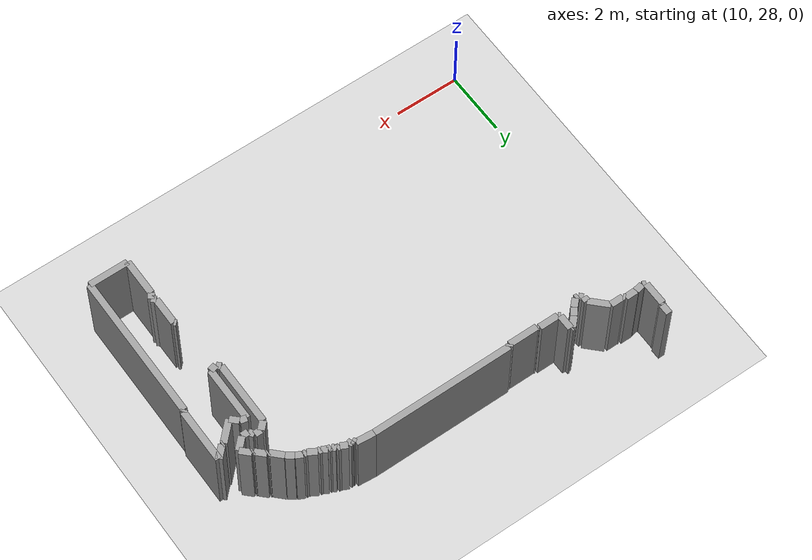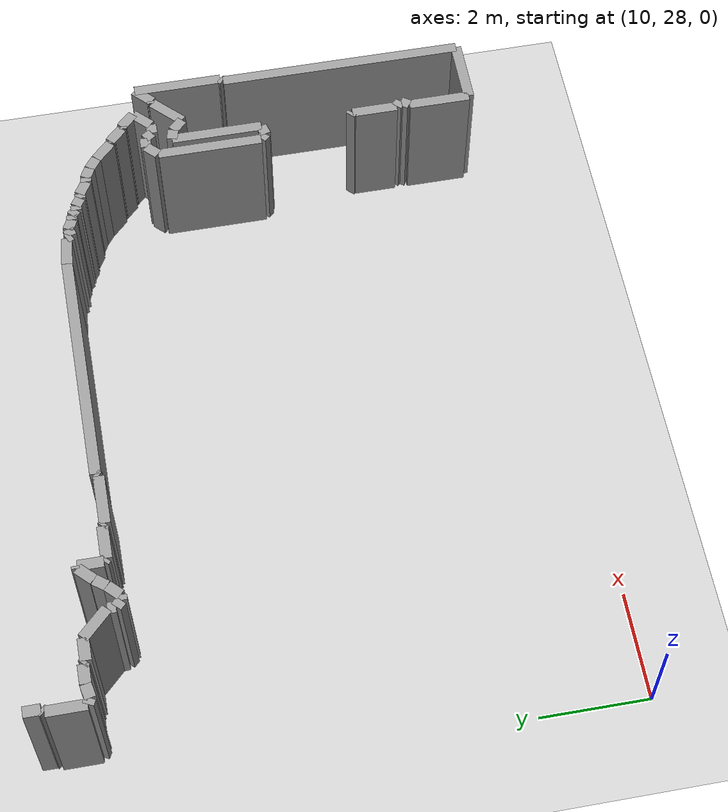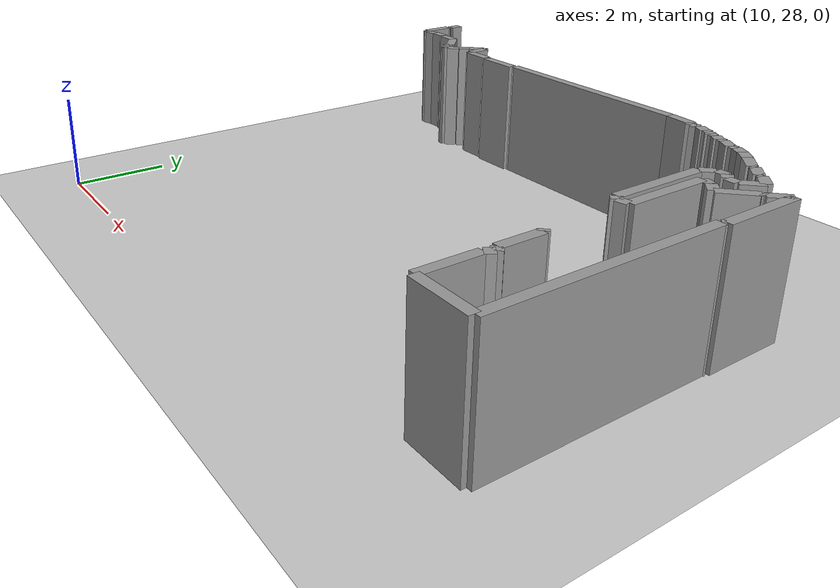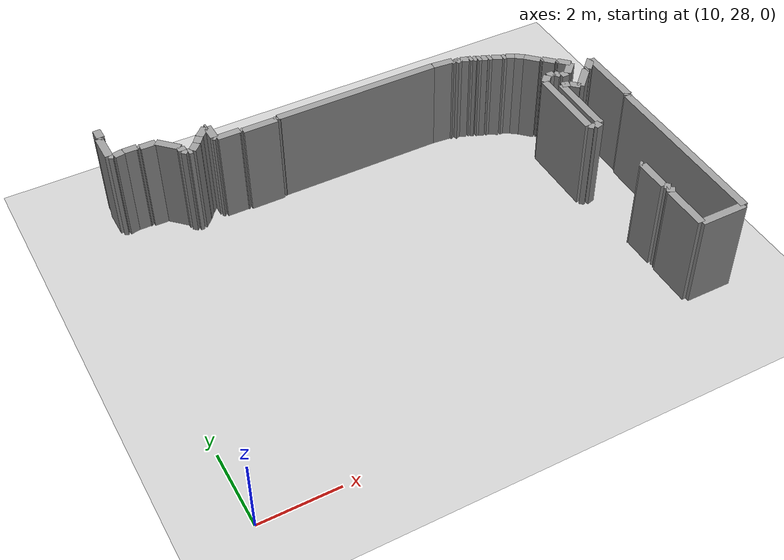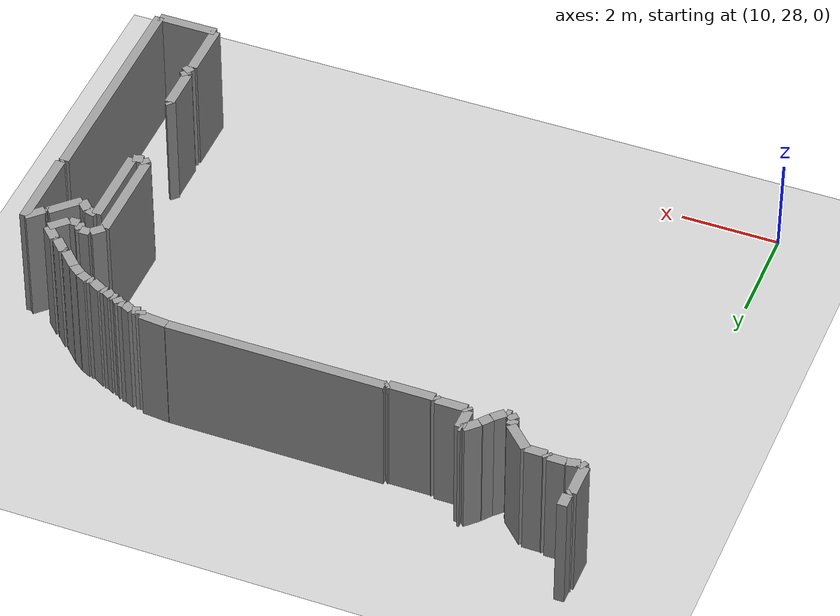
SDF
<sdf version="1.4">
 <world name="1_wall">
  <model name="ground_plane">
   <static>1</static>
   <link name="link">
    <collision name="collision">
     <geometry><plane><normal>0 0 1</normal><size>1000 1000</size></plane></geometry>
     <surface><friction><ode><mu>100</mu><mu2>50</mu2></ode></friction></surface>
    </collision>
    <visual name="visual">
     <cast_shadows>0</cast_shadows>
     <geometry><plane><normal>0 0 1</normal><size>10000 10000</size></plane></geometry>
     <material>
      <script><uri>file://media/materials/scripts/gazebo.material</uri><name>Gazebo/Grey</name></script>
     </material>
    </visual>
    <velocity_decay><linear>0</linear><angular>0</angular></velocity_decay>
   </link>
  </model>
  <model name="Wall_258">
   <static>1</static>
   <link name="Wall_258">
    <collision name="Wall_Collision_258">
     <geometry><box><size>0.3 0.2 2.5</size></box></geometry>
     <pose>0 0 1.25 0 -0 0</pose>
    </collision>
    <visual name="Wall_Visual_258">
     <pose>0 0 1.25 0 -0 0</pose>
     <geometry><box><size>0.3 0.2 2.5</size></box></geometry>
     <material>
      <script><uri>file://media/materials/scripts/gazebo.material</uri><name>Gazebo/Grey</name></script>
     </material>
    </visual>
    <velocity_decay><linear>0</linear><angular>0</angular></velocity_decay>
    <pose>10.7 38.35 0 0 0 -1.57079632679</pose>
   </link>
  </model>
  <model name="Wall_259">
   <static>1</static>
   <link name="Wall_259">
    <collision name="Wall_Collision_259">
     <geometry><box><size>0.0707106781187 0.2 2.5</size></box></geometry>
     <pose>0 0 1.25 0 -0 0</pose>
    </collision>
    <visual name="Wall_Visual_259">
     <pose>0 0 1.25 0 -0 0</pose>
     <geometry><box><size>0.0707106781187 0.2 2.5</size></box></geometry>
     <material>
      <script><uri>file://media/materials/scripts/gazebo.material</uri><name>Gazebo/Grey</name></script>
     </material>
    </visual>
    <velocity_decay><linear>0</linear><angular>0</angular></velocity_decay>
    <pose>10.675 38.175 0 0 0 -2.35619449019</pose>
   </link>
  </model>
  <model name="Wall_260">
   <static>1</static>
   <link name="Wall_260">
    <collision name="Wall_Collision_260">
     <geometry><box><size>0.7 0.2 2.5</size></box></geometry>
     <pose>0 0 1.25 0 -0 0</pose>
    </collision>
    <visual name="Wall_Visual_260">
     <pose>0 0 1.25 0 -0 0</pose>
     <geometry><box><size>0.7 0.2 2.5</size></box></geometry>
     <material>
      <script><uri>file://media/materials/scripts/gazebo.material</uri><name>Gazebo/Grey</name></script>
     </material>
    </visual>
    <velocity_decay><linear>0</linear><angular>0</angular></velocity_decay>
    <pose>10.65 37.8 0 0 0 -1.57079632679</pose>
   </link>
  </model>
  <model name="Wall_261">
   <static>1</static>
   <link name="Wall_261">
    <collision name="Wall_Collision_261">
     <geometry><box><size>0.111803398875 0.2 2.5</size></box></geometry>
     <pose>0 0 1.25 0 -0 0</pose>
    </collision>
    <visual name="Wall_Visual_261">
     <pose>0 0 1.25 0 -0 0</pose>
     <geometry><box><size>0.111803398875 0.2 2.5</size></box></geometry>
     <material>
      <script><uri>file://media/materials/scripts/gazebo.material</uri><name>Gazebo/Grey</name></script>
     </material>
    </visual>
    <velocity_decay><linear>0</linear><angular>0</angular></velocity_decay>
    <pose>10.7 37.425 0 0 0 -0.463647609001</pose>
   </link>
  </model>
  <model name="Wall_262">
   <static>1</static>
   <link name="Wall_262">
    <collision name="Wall_Collision_262">
     <geometry><box><size>0.25495097568 0.2 2.5</size></box></geometry>
     <pose>0 0 1.25 0 -0 0</pose>
    </collision>
    <visual name="Wall_Visual_262">
     <pose>0 0 1.25 0 -0 0</pose>
     <geometry><box><size>0.25495097568 0.2 2.5</size></box></geometry>
     <material>
      <script><uri>file://media/materials/scripts/gazebo.material</uri><name>Gazebo/Grey</name></script>
     </material>
    </visual>
    <velocity_decay><linear>0</linear><angular>0</angular></velocity_decay>
    <pose>10.875 37.425 0 0 0 0.19739555985</pose>
   </link>
  </model>
  <model name="Wall_263">
   <static>1</static>
   <link name="Wall_263">
    <collision name="Wall_Collision_263">
     <geometry><box><size>0.35 0.2 2.5</size></box></geometry>
     <pose>0 0 1.25 0 -0 0</pose>
    </collision>
    <visual name="Wall_Visual_263">
     <pose>0 0 1.25 0 -0 0</pose>
     <geometry><box><size>0.35 0.2 2.5</size></box></geometry>
     <material>
      <script><uri>file://media/materials/scripts/gazebo.material</uri><name>Gazebo/Grey</name></script>
     </material>
    </visual>
    <velocity_decay><linear>0</linear><angular>0</angular></velocity_decay>
    <pose>11.175 37.45 0 0 0 0.0</pose>
   </link>
  </model>
  <model name="Wall_264">
   <static>1</static>
   <link name="Wall_264">
    <collision name="Wall_Collision_264">
     <geometry><box><size>0.0707106781187 0.2 2.5</size></box></geometry>
     <pose>0 0 1.25 0 -0 0</pose>
    </collision>
    <visual name="Wall_Visual_264">
     <pose>0 0 1.25 0 -0 0</pose>
     <geometry><box><size>0.0707106781187 0.2 2.5</size></box></geometry>
     <material>
      <script><uri>file://media/materials/scripts/gazebo.material</uri><name>Gazebo/Grey</name></script>
     </material>
    </visual>
    <velocity_decay><linear>0</linear><angular>0</angular></velocity_decay>
    <pose>11.375 37.425 0 0 0 -0.785398163398</pose>
   </link>
  </model>
  <model name="Wall_265">
   <static>1</static>
   <link name="Wall_265">
    <collision name="Wall_Collision_265">
     <geometry><box><size>0.4 0.2 2.5</size></box></geometry>
     <pose>0 0 1.25 0 -0 0</pose>
    </collision>
    <visual name="Wall_Visual_265">
     <pose>0 0 1.25 0 -0 0</pose>
     <geometry><box><size>0.4 0.2 2.5</size></box></geometry>
     <material>
      <script><uri>file://media/materials/scripts/gazebo.material</uri><name>Gazebo/Grey</name></script>
     </material>
    </visual>
    <velocity_decay><linear>0</linear><angular>0</angular></velocity_decay>
    <pose>11.6 37.4 0 0 0 0.0</pose>
   </link>
  </model>
  <model name="Wall_266">
   <static>1</static>
   <link name="Wall_266">
    <collision name="Wall_Collision_266">
     <geometry><box><size>0.636396103068 0.2 2.5</size></box></geometry>
     <pose>0 0 1.25 0 -0 0</pose>
    </collision>
    <visual name="Wall_Visual_266">
     <pose>0 0 1.25 0 -0 0</pose>
     <geometry><box><size>0.636396103068 0.2 2.5</size></box></geometry>
     <material>
      <script><uri>file://media/materials/scripts/gazebo.material</uri><name>Gazebo/Grey</name></script>
     </material>
    </visual>
    <velocity_decay><linear>0</linear><angular>0</angular></velocity_decay>
    <pose>12.025 37.175 0 0 0 -0.785398163397</pose>
   </link>
  </model>
  <model name="Wall_267">
   <static>1</static>
   <link name="Wall_267">
    <collision name="Wall_Collision_267">
     <geometry><box><size>0.15 0.2 2.5</size></box></geometry>
     <pose>0 0 1.25 0 -0 0</pose>
    </collision>
    <visual name="Wall_Visual_267">
     <pose>0 0 1.25 0 -0 0</pose>
     <geometry><box><size>0.15 0.2 2.5</size></box></geometry>
     <material>
      <script><uri>file://media/materials/scripts/gazebo.material</uri><name>Gazebo/Grey</name></script>
     </material>
    </visual>
    <velocity_decay><linear>0</linear><angular>0</angular></velocity_decay>
    <pose>12.25 36.875 0 0 0 -1.57079632679</pose>
   </link>
  </model>
  <model name="Wall_268">
   <static>1</static>
   <link name="Wall_268">
    <collision name="Wall_Collision_268">
     <geometry><box><size>0.141421356237 0.2 2.5</size></box></geometry>
     <pose>0 0 1.25 0 -0 0</pose>
    </collision>
    <visual name="Wall_Visual_268">
     <pose>0 0 1.25 0 -0 0</pose>
     <geometry><box><size>0.141421356237 0.2 2.5</size></box></geometry>
     <material>
      <script><uri>file://media/materials/scripts/gazebo.material</uri><name>Gazebo/Grey</name></script>
     </material>
    </visual>
    <velocity_decay><linear>0</linear><angular>0</angular></velocity_decay>
    <pose>12.3 36.75 0 0 0 -0.785398163397</pose>
   </link>
  </model>
  <model name="Wall_269">
   <static>1</static>
   <link name="Wall_269">
    <collision name="Wall_Collision_269">
     <geometry><box><size>0.1 0.2 2.5</size></box></geometry>
     <pose>0 0 1.25 0 -0 0</pose>
    </collision>
    <visual name="Wall_Visual_269">
     <pose>0 0 1.25 0 -0 0</pose>
     <geometry><box><size>0.1 0.2 2.5</size></box></geometry>
     <material>
      <script><uri>file://media/materials/scripts/gazebo.material</uri><name>Gazebo/Grey</name></script>
     </material>
    </visual>
    <velocity_decay><linear>0</linear><angular>0</angular></velocity_decay>
    <pose>12.4 36.7 0 0 0 0.0</pose>
   </link>
  </model>
  <model name="Wall_270">
   <static>1</static>
   <link name="Wall_270">
    <collision name="Wall_Collision_270">
     <geometry><box><size>0.282842712475 0.2 2.5</size></box></geometry>
     <pose>0 0 1.25 0 -0 0</pose>
    </collision>
    <visual name="Wall_Visual_270">
     <pose>0 0 1.25 0 -0 0</pose>
     <geometry><box><size>0.282842712475 0.2 2.5</size></box></geometry>
     <material>
      <script><uri>file://media/materials/scripts/gazebo.material</uri><name>Gazebo/Grey</name></script>
     </material>
    </visual>
    <velocity_decay><linear>0</linear><angular>0</angular></velocity_decay>
    <pose>12.55 36.8 0 0 0 0.785398163397</pose>
   </link>
  </model>
  <model name="Wall_271">
   <static>1</static>
   <link name="Wall_271">
    <collision name="Wall_Collision_271">
     <geometry><box><size>0.25 0.2 2.5</size></box></geometry>
     <pose>0 0 1.25 0 -0 0</pose>
    </collision>
    <visual name="Wall_Visual_271">
     <pose>0 0 1.25 0 -0 0</pose>
     <geometry><box><size>0.25 0.2 2.5</size></box></geometry>
     <material>
      <script><uri>file://media/materials/scripts/gazebo.material</uri><name>Gazebo/Grey</name></script>
     </material>
    </visual>
    <velocity_decay><linear>0</linear><angular>0</angular></velocity_decay>
    <pose>12.725 37.0 0 0 0 0.927295218002</pose>
   </link>
  </model>
  <model name="Wall_272">
   <static>1</static>
   <link name="Wall_272">
    <collision name="Wall_Collision_272">
     <geometry><box><size>0.353553390593 0.2 2.5</size></box></geometry>
     <pose>0 0 1.25 0 -0 0</pose>
    </collision>
    <visual name="Wall_Visual_272">
     <pose>0 0 1.25 0 -0 0</pose>
     <geometry><box><size>0.353553390593 0.2 2.5</size></box></geometry>
     <material>
      <script><uri>file://media/materials/scripts/gazebo.material</uri><name>Gazebo/Grey</name></script>
     </material>
    </visual>
    <velocity_decay><linear>0</linear><angular>0</angular></velocity_decay>
    <pose>12.925 37.225 0 0 0 0.785398163397</pose>
   </link>
  </model>
  <model name="Wall_273">
   <static>1</static>
   <link name="Wall_273">
    <collision name="Wall_Collision_273">
     <geometry><box><size>0.05 0.2 2.5</size></box></geometry>
     <pose>0 0 1.25 0 -0 0</pose>
    </collision>
    <visual name="Wall_Visual_273">
     <pose>0 0 1.25 0 -0 0</pose>
     <geometry><box><size>0.05 0.2 2.5</size></box></geometry>
     <material>
      <script><uri>file://media/materials/scripts/gazebo.material</uri><name>Gazebo/Grey</name></script>
     </material>
    </visual>
    <velocity_decay><linear>0</linear><angular>0</angular></velocity_decay>
    <pose>13.075 37.35 0 0 0 0.0</pose>
   </link>
  </model>
  <model name="Wall_274">
   <static>1</static>
   <link name="Wall_274">
    <collision name="Wall_Collision_274">
     <geometry><box><size>0.45 0.2 2.5</size></box></geometry>
     <pose>0 0 1.25 0 -0 0</pose>
    </collision>
    <visual name="Wall_Visual_274">
     <pose>0 0 1.25 0 -0 0</pose>
     <geometry><box><size>0.45 0.2 2.5</size></box></geometry>
     <material>
      <script><uri>file://media/materials/scripts/gazebo.material</uri><name>Gazebo/Grey</name></script>
     </material>
    </visual>
    <velocity_decay><linear>0</linear><angular>0</angular></velocity_decay>
    <pose>13.1 37.125 0 0 0 -1.57079632679</pose>
   </link>
  </model>
  <model name="Wall_275">
   <static>1</static>
   <link name="Wall_275">
    <collision name="Wall_Collision_275">
     <geometry><box><size>0.0707106781187 0.2 2.5</size></box></geometry>
     <pose>0 0 1.25 0 -0 0</pose>
    </collision>
    <visual name="Wall_Visual_275">
     <pose>0 0 1.25 0 -0 0</pose>
     <geometry><box><size>0.0707106781187 0.2 2.5</size></box></geometry>
     <material>
      <script><uri>file://media/materials/scripts/gazebo.material</uri><name>Gazebo/Grey</name></script>
     </material>
    </visual>
    <velocity_decay><linear>0</linear><angular>0</angular></velocity_decay>
    <pose>13.125 36.875 0 0 0 -0.785398163397</pose>
   </link>
  </model>
  <model name="Wall_276">
   <static>1</static>
   <link name="Wall_276">
    <collision name="Wall_Collision_276">
     <geometry><box><size>0.6 0.2 2.5</size></box></geometry>
     <pose>0 0 1.25 0 -0 0</pose>
    </collision>
    <visual name="Wall_Visual_276">
     <pose>0 0 1.25 0 -0 0</pose>
     <geometry><box><size>0.6 0.2 2.5</size></box></geometry>
     <material>
      <script><uri>file://media/materials/scripts/gazebo.material</uri><name>Gazebo/Grey</name></script>
     </material>
    </visual>
    <velocity_decay><linear>0</linear><angular>0</angular></velocity_decay>
    <pose>13.45 36.85 0 0 0 0.0</pose>
   </link>
  </model>
  <model name="Wall_277">
   <static>1</static>
   <link name="Wall_277">
    <collision name="Wall_Collision_277">
     <geometry><box><size>0.0707106781187 0.2 2.5</size></box></geometry>
     <pose>0 0 1.25 0 -0 0</pose>
    </collision>
    <visual name="Wall_Visual_277">
     <pose>0 0 1.25 0 -0 0</pose>
     <geometry><box><size>0.0707106781187 0.2 2.5</size></box></geometry>
     <material>
      <script><uri>file://media/materials/scripts/gazebo.material</uri><name>Gazebo/Grey</name></script>
     </material>
    </visual>
    <velocity_decay><linear>0</linear><angular>0</angular></velocity_decay>
    <pose>13.775 36.825 0 0 0 -0.785398163397</pose>
   </link>
  </model>
  <model name="Wall_278">
   <static>1</static>
   <link name="Wall_278">
    <collision name="Wall_Collision_278">
     <geometry><box><size>0.9 0.2 2.5</size></box></geometry>
     <pose>0 0 1.25 0 -0 0</pose>
    </collision>
    <visual name="Wall_Visual_278">
     <pose>0 0 1.25 0 -0 0</pose>
     <geometry><box><size>0.9 0.2 2.5</size></box></geometry>
     <material>
      <script><uri>file://media/materials/scripts/gazebo.material</uri><name>Gazebo/Grey</name></script>
     </material>
    </visual>
    <velocity_decay><linear>0</linear><angular>0</angular></velocity_decay>
    <pose>14.25 36.8 0 0 0 0.0</pose>
   </link>
  </model>
  <model name="Wall_279">
   <static>1</static>
   <link name="Wall_279">
    <collision name="Wall_Collision_279">
     <geometry><box><size>0.0707106781187 0.2 2.5</size></box></geometry>
     <pose>0 0 1.25 0 -0 0</pose>
    </collision>
    <visual name="Wall_Visual_279">
     <pose>0 0 1.25 0 -0 0</pose>
     <geometry><box><size>0.0707106781187 0.2 2.5</size></box></geometry>
     <material>
      <script><uri>file://media/materials/scripts/gazebo.material</uri><name>Gazebo/Grey</name></script>
     </material>
    </visual>
    <velocity_decay><linear>0</linear><angular>0</angular></velocity_decay>
    <pose>14.725 36.825 0 0 0 0.785398163397</pose>
   </link>
  </model>
  <model name="Wall_280">
   <static>1</static>
   <link name="Wall_280">
    <collision name="Wall_Collision_280">
     <geometry><box><size>4.35 0.2 2.5</size></box></geometry>
     <pose>0 0 1.25 0 -0 0</pose>
    </collision>
    <visual name="Wall_Visual_280">
     <pose>0 0 1.25 0 -0 0</pose>
     <geometry><box><size>4.35 0.2 2.5</size></box></geometry>
     <material>
      <script><uri>file://media/materials/scripts/gazebo.material</uri><name>Gazebo/Grey</name></script>
     </material>
    </visual>
    <velocity_decay><linear>0</linear><angular>0</angular></velocity_decay>
    <pose>16.925 36.85 0 0 0 0.0</pose>
   </link>
  </model>
  <model name="Wall_281">
   <static>1</static>
   <link name="Wall_281">
    <collision name="Wall_Collision_281">
     <geometry><box><size>0.552268050859 0.2 2.5</size></box></geometry>
     <pose>0 0 1.25 0 -0 0</pose>
    </collision>
    <visual name="Wall_Visual_281">
     <pose>0 0 1.25 0 -0 0</pose>
     <geometry><box><size>0.552268050859 0.2 2.5</size></box></geometry>
     <material>
      <script><uri>file://media/materials/scripts/gazebo.material</uri><name>Gazebo/Grey</name></script>
     </material>
    </visual>
    <velocity_decay><linear>0</linear><angular>0</angular></velocity_decay>
    <pose>19.375 36.825 0 0 0 -0.0906598872007</pose>
   </link>
  </model>
  <model name="Wall_282">
   <static>1</static>
   <link name="Wall_282">
    <collision name="Wall_Collision_282">
     <geometry><box><size>0.111803398875 0.2 2.5</size></box></geometry>
     <pose>0 0 1.25 0 -0 0</pose>
    </collision>
    <visual name="Wall_Visual_282">
     <pose>0 0 1.25 0 -0 0</pose>
     <geometry><box><size>0.111803398875 0.2 2.5</size></box></geometry>
     <material>
      <script><uri>file://media/materials/scripts/gazebo.material</uri><name>Gazebo/Grey</name></script>
     </material>
    </visual>
    <velocity_decay><linear>0</linear><angular>0</angular></velocity_decay>
    <pose>19.675 36.75 0 0 0 -1.10714871779</pose>
   </link>
  </model>
  <model name="Wall_283">
   <static>1</static>
   <link name="Wall_283">
    <collision name="Wall_Collision_283">
     <geometry><box><size>0.158113883008 0.2 2.5</size></box></geometry>
     <pose>0 0 1.25 0 -0 0</pose>
    </collision>
    <visual name="Wall_Visual_283">
     <pose>0 0 1.25 0 -0 0</pose>
     <geometry><box><size>0.158113883008 0.2 2.5</size></box></geometry>
     <material>
      <script><uri>file://media/materials/scripts/gazebo.material</uri><name>Gazebo/Grey</name></script>
     </material>
    </visual>
    <velocity_decay><linear>0</linear><angular>0</angular></velocity_decay>
    <pose>19.775 36.725 0 0 0 0.321750554397</pose>
   </link>
  </model>
  <model name="Wall_284">
   <static>1</static>
   <link name="Wall_284">
    <collision name="Wall_Collision_284">
     <geometry><box><size>0.22360679775 0.2 2.5</size></box></geometry>
     <pose>0 0 1.25 0 -0 0</pose>
    </collision>
    <visual name="Wall_Visual_284">
     <pose>0 0 1.25 0 -0 0</pose>
     <geometry><box><size>0.22360679775 0.2 2.5</size></box></geometry>
     <material>
      <script><uri>file://media/materials/scripts/gazebo.material</uri><name>Gazebo/Grey</name></script>
     </material>
    </visual>
    <velocity_decay><linear>0</linear><angular>0</angular></velocity_decay>
    <pose>19.95 36.7 0 0 0 -0.463647609001</pose>
   </link>
  </model>
  <model name="Wall_285">
   <static>1</static>
   <link name="Wall_285">
    <collision name="Wall_Collision_285">
     <geometry><box><size>0.1 0.2 2.5</size></box></geometry>
     <pose>0 0 1.25 0 -0 0</pose>
    </collision>
    <visual name="Wall_Visual_285">
     <pose>0 0 1.25 0 -0 0</pose>
     <geometry><box><size>0.1 0.2 2.5</size></box></geometry>
     <material>
      <script><uri>file://media/materials/scripts/gazebo.material</uri><name>Gazebo/Grey</name></script>
     </material>
    </visual>
    <velocity_decay><linear>0</linear><angular>0</angular></velocity_decay>
    <pose>20.1 36.65 0 0 0 0.0</pose>
   </link>
  </model>
  <model name="Wall_286">
   <static>1</static>
   <link name="Wall_286">
    <collision name="Wall_Collision_286">
     <geometry><box><size>0.141421356237 0.2 2.5</size></box></geometry>
     <pose>0 0 1.25 0 -0 0</pose>
    </collision>
    <visual name="Wall_Visual_286">
     <pose>0 0 1.25 0 -0 0</pose>
     <geometry><box><size>0.141421356237 0.2 2.5</size></box></geometry>
     <material>
      <script><uri>file://media/materials/scripts/gazebo.material</uri><name>Gazebo/Grey</name></script>
     </material>
    </visual>
    <velocity_decay><linear>0</linear><angular>0</angular></velocity_decay>
    <pose>20.2 36.6 0 0 0 -0.785398163397</pose>
   </link>
  </model>
  <model name="Wall_287">
   <static>1</static>
   <link name="Wall_287">
    <collision name="Wall_Collision_287">
     <geometry><box><size>0.1 0.2 2.5</size></box></geometry>
     <pose>0 0 1.25 0 -0 0</pose>
    </collision>
    <visual name="Wall_Visual_287">
     <pose>0 0 1.25 0 -0 0</pose>
     <geometry><box><size>0.1 0.2 2.5</size></box></geometry>
     <material>
      <script><uri>file://media/materials/scripts/gazebo.material</uri><name>Gazebo/Grey</name></script>
     </material>
    </visual>
    <velocity_decay><linear>0</linear><angular>0</angular></velocity_decay>
    <pose>20.3 36.55 0 0 0 0.0</pose>
   </link>
  </model>
  <model name="Wall_288">
   <static>1</static>
   <link name="Wall_288">
    <collision name="Wall_Collision_288">
     <geometry><box><size>0.180277563773 0.2 2.5</size></box></geometry>
     <pose>0 0 1.25 0 -0 0</pose>
    </collision>
    <visual name="Wall_Visual_288">
     <pose>0 0 1.25 0 -0 0</pose>
     <geometry><box><size>0.180277563773 0.2 2.5</size></box></geometry>
     <material>
      <script><uri>file://media/materials/scripts/gazebo.material</uri><name>Gazebo/Grey</name></script>
     </material>
    </visual>
    <velocity_decay><linear>0</linear><angular>0</angular></velocity_decay>
    <pose>20.425 36.5 0 0 0 -0.588002603548</pose>
   </link>
  </model>
  <model name="Wall_289">
   <static>1</static>
   <link name="Wall_289">
    <collision name="Wall_Collision_289">
     <geometry><box><size>0.1 0.2 2.5</size></box></geometry>
     <pose>0 0 1.25 0 -0 0</pose>
    </collision>
    <visual name="Wall_Visual_289">
     <pose>0 0 1.25 0 -0 0</pose>
     <geometry><box><size>0.1 0.2 2.5</size></box></geometry>
     <material>
      <script><uri>file://media/materials/scripts/gazebo.material</uri><name>Gazebo/Grey</name></script>
     </material>
    </visual>
    <velocity_decay><linear>0</linear><angular>0</angular></velocity_decay>
    <pose>20.55 36.45 0 0 0 0.0</pose>
   </link>
  </model>
  <model name="Wall_290">
   <static>1</static>
   <link name="Wall_290">
    <collision name="Wall_Collision_290">
     <geometry><box><size>0.291547594742 0.2 2.5</size></box></geometry>
     <pose>0 0 1.25 0 -0 0</pose>
    </collision>
    <visual name="Wall_Visual_290">
     <pose>0 0 1.25 0 -0 0</pose>
     <geometry><box><size>0.291547594742 0.2 2.5</size></box></geometry>
     <material>
      <script><uri>file://media/materials/scripts/gazebo.material</uri><name>Gazebo/Grey</name></script>
     </material>
    </visual>
    <velocity_decay><linear>0</linear><angular>0</angular></velocity_decay>
    <pose>20.725 36.375 0 0 0 -0.540419500271</pose>
   </link>
  </model>
  <model name="Wall_291">
   <static>1</static>
   <link name="Wall_291">
    <collision name="Wall_Collision_291">
     <geometry><box><size>0.1 0.2 2.5</size></box></geometry>
     <pose>0 0 1.25 0 -0 0</pose>
    </collision>
    <visual name="Wall_Visual_291">
     <pose>0 0 1.25 0 -0 0</pose>
     <geometry><box><size>0.1 0.2 2.5</size></box></geometry>
     <material>
      <script><uri>file://media/materials/scripts/gazebo.material</uri><name>Gazebo/Grey</name></script>
     </material>
    </visual>
    <velocity_decay><linear>0</linear><angular>0</angular></velocity_decay>
    <pose>20.9 36.3 0 0 0 0.0</pose>
   </link>
  </model>
  <model name="Wall_292">
   <static>1</static>
   <link name="Wall_292">
    <collision name="Wall_Collision_292">
     <geometry><box><size>0.22360679775 0.2 2.5</size></box></geometry>
     <pose>0 0 1.25 0 -0 0</pose>
    </collision>
    <visual name="Wall_Visual_292">
     <pose>0 0 1.25 0 -0 0</pose>
     <geometry><box><size>0.22360679775 0.2 2.5</size></box></geometry>
     <material>
      <script><uri>file://media/materials/scripts/gazebo.material</uri><name>Gazebo/Grey</name></script>
     </material>
    </visual>
    <velocity_decay><linear>0</linear><angular>0</angular></velocity_decay>
    <pose>21.05 36.25 0 0 0 -0.463647609001</pose>
   </link>
  </model>
  <model name="Wall_293">
   <static>1</static>
   <link name="Wall_293">
    <collision name="Wall_Collision_293">
     <geometry><box><size>0.25 0.2 2.5</size></box></geometry>
     <pose>0 0 1.25 0 -0 0</pose>
    </collision>
    <visual name="Wall_Visual_293">
     <pose>0 0 1.25 0 -0 0</pose>
     <geometry><box><size>0.25 0.2 2.5</size></box></geometry>
     <material>
      <script><uri>file://media/materials/scripts/gazebo.material</uri><name>Gazebo/Grey</name></script>
     </material>
    </visual>
    <velocity_decay><linear>0</linear><angular>0</angular></velocity_decay>
    <pose>21.25 36.125 0 0 0 -0.643501108793</pose>
   </link>
  </model>
  <model name="Wall_294">
   <static>1</static>
   <link name="Wall_294">
    <collision name="Wall_Collision_294">
     <geometry><box><size>0.424264068712 0.2 2.5</size></box></geometry>
     <pose>0 0 1.25 0 -0 0</pose>
    </collision>
    <visual name="Wall_Visual_294">
     <pose>0 0 1.25 0 -0 0</pose>
     <geometry><box><size>0.424264068712 0.2 2.5</size></box></geometry>
     <material>
      <script><uri>file://media/materials/scripts/gazebo.material</uri><name>Gazebo/Grey</name></script>
     </material>
    </visual>
    <velocity_decay><linear>0</linear><angular>0</angular></velocity_decay>
    <pose>21.5 35.9 0 0 0 -0.785398163397</pose>
   </link>
  </model>
  <model name="Wall_295">
   <static>1</static>
   <link name="Wall_295">
    <collision name="Wall_Collision_295">
     <geometry><box><size>0.05 0.2 2.5</size></box></geometry>
     <pose>0 0 1.25 0 -0 0</pose>
    </collision>
    <visual name="Wall_Visual_295">
     <pose>0 0 1.25 0 -0 0</pose>
     <geometry><box><size>0.05 0.2 2.5</size></box></geometry>
     <material>
      <script><uri>file://media/materials/scripts/gazebo.material</uri><name>Gazebo/Grey</name></script>
     </material>
    </visual>
    <velocity_decay><linear>0</linear><angular>0</angular></velocity_decay>
    <pose>21.675 35.75 0 0 0 0.0</pose>
   </link>
  </model>
  <model name="Wall_296">
   <static>1</static>
   <link name="Wall_296">
    <collision name="Wall_Collision_296">
     <geometry><box><size>0.353553390593 0.2 2.5</size></box></geometry>
     <pose>0 0 1.25 0 -0 0</pose>
    </collision>
    <visual name="Wall_Visual_296">
     <pose>0 0 1.25 0 -0 0</pose>
     <geometry><box><size>0.353553390593 0.2 2.5</size></box></geometry>
     <material>
      <script><uri>file://media/materials/scripts/gazebo.material</uri><name>Gazebo/Grey</name></script>
     </material>
    </visual>
    <velocity_decay><linear>0</linear><angular>0</angular></velocity_decay>
    <pose>21.825 35.625 0 0 0 -0.785398163397</pose>
   </link>
  </model>
  <model name="Wall_297">
   <static>1</static>
   <link name="Wall_297">
    <collision name="Wall_Collision_297">
     <geometry><box><size>0.05 0.2 2.5</size></box></geometry>
     <pose>0 0 1.25 0 -0 0</pose>
    </collision>
    <visual name="Wall_Visual_297">
     <pose>0 0 1.25 0 -0 0</pose>
     <geometry><box><size>0.05 0.2 2.5</size></box></geometry>
     <material>
      <script><uri>file://media/materials/scripts/gazebo.material</uri><name>Gazebo/Grey</name></script>
     </material>
    </visual>
    <velocity_decay><linear>0</linear><angular>0</angular></velocity_decay>
    <pose>21.975 35.5 0 0 0 0.0</pose>
   </link>
  </model>
  <model name="Wall_298">
   <static>1</static>
   <link name="Wall_298">
    <collision name="Wall_Collision_298">
     <geometry><box><size>0.353553390593 0.2 2.5</size></box></geometry>
     <pose>0 0 1.25 0 -0 0</pose>
    </collision>
    <visual name="Wall_Visual_298">
     <pose>0 0 1.25 0 -0 0</pose>
     <geometry><box><size>0.353553390593 0.2 2.5</size></box></geometry>
     <material>
      <script><uri>file://media/materials/scripts/gazebo.material</uri><name>Gazebo/Grey</name></script>
     </material>
    </visual>
    <velocity_decay><linear>0</linear><angular>0</angular></velocity_decay>
    <pose>22.125 35.375 0 0 0 -0.785398163397</pose>
   </link>
  </model>
  <model name="Wall_299">
   <static>1</static>
   <link name="Wall_299">
    <collision name="Wall_Collision_299">
     <geometry><box><size>0.424264068712 0.2 2.5</size></box></geometry>
     <pose>0 0 1.25 0 -0 0</pose>
    </collision>
    <visual name="Wall_Visual_299">
     <pose>0 0 1.25 0 -0 0</pose>
     <geometry><box><size>0.424264068712 0.2 2.5</size></box></geometry>
     <material>
      <script><uri>file://media/materials/scripts/gazebo.material</uri><name>Gazebo/Grey</name></script>
     </material>
    </visual>
    <velocity_decay><linear>0</linear><angular>0</angular></velocity_decay>
    <pose>22.1 35.1 0 0 0 -2.35619449019</pose>
   </link>
  </model>
  <model name="Wall_300">
   <static>1</static>
   <link name="Wall_300">
    <collision name="Wall_Collision_300">
     <geometry><box><size>0.2 0.2 2.5</size></box></geometry>
     <pose>0 0 1.25 0 -0 0</pose>
    </collision>
    <visual name="Wall_Visual_300">
     <pose>0 0 1.25 0 -0 0</pose>
     <geometry><box><size>0.2 0.2 2.5</size></box></geometry>
     <material>
      <script><uri>file://media/materials/scripts/gazebo.material</uri><name>Gazebo/Grey</name></script>
     </material>
    </visual>
    <velocity_decay><linear>0</linear><angular>0</angular></velocity_decay>
    <pose>21.85 34.95 0 0 0 3.14159265359</pose>
   </link>
  </model>
  <model name="Wall_301">
   <static>1</static>
   <link name="Wall_301">
    <collision name="Wall_Collision_301">
     <geometry><box><size>0.180277563773 0.2 2.5</size></box></geometry>
     <pose>0 0 1.25 0 -0 0</pose>
    </collision>
    <visual name="Wall_Visual_301">
     <pose>0 0 1.25 0 -0 0</pose>
     <geometry><box><size>0.180277563773 0.2 2.5</size></box></geometry>
     <material>
      <script><uri>file://media/materials/scripts/gazebo.material</uri><name>Gazebo/Grey</name></script>
     </material>
    </visual>
    <velocity_decay><linear>0</linear><angular>0</angular></velocity_decay>
    <pose>21.7 35.025 0 0 0 2.15879893034</pose>
   </link>
  </model>
  <model name="Wall_302">
   <static>1</static>
   <link name="Wall_302">
    <collision name="Wall_Collision_302">
     <geometry><box><size>0.2 0.2 2.5</size></box></geometry>
     <pose>0 0 1.25 0 -0 0</pose>
    </collision>
    <visual name="Wall_Visual_302">
     <pose>0 0 1.25 0 -0 0</pose>
     <geometry><box><size>0.2 0.2 2.5</size></box></geometry>
     <material>
      <script><uri>file://media/materials/scripts/gazebo.material</uri><name>Gazebo/Grey</name></script>
     </material>
    </visual>
    <velocity_decay><linear>0</linear><angular>0</angular></velocity_decay>
    <pose>21.55 35.1 0 0 0 3.14159265359</pose>
   </link>
  </model>
  <model name="Wall_303">
   <static>1</static>
   <link name="Wall_303">
    <collision name="Wall_Collision_303">
     <geometry><box><size>0.282842712475 0.2 2.5</size></box></geometry>
     <pose>0 0 1.25 0 -0 0</pose>
    </collision>
    <visual name="Wall_Visual_303">
     <pose>0 0 1.25 0 -0 0</pose>
     <geometry><box><size>0.282842712475 0.2 2.5</size></box></geometry>
     <material>
      <script><uri>file://media/materials/scripts/gazebo.material</uri><name>Gazebo/Grey</name></script>
     </material>
    </visual>
    <velocity_decay><linear>0</linear><angular>0</angular></velocity_decay>
    <pose>21.35 35.0 0 0 0 -2.35619449019</pose>
   </link>
  </model>
  <model name="Wall_304">
   <static>1</static>
   <link name="Wall_304">
    <collision name="Wall_Collision_304">
     <geometry><box><size>1.95 0.2 2.5</size></box></geometry>
     <pose>0 0 1.25 0 -0 0</pose>
    </collision>
    <visual name="Wall_Visual_304">
     <pose>0 0 1.25 0 -0 0</pose>
     <geometry><box><size>1.95 0.2 2.5</size></box></geometry>
     <material>
      <script><uri>file://media/materials/scripts/gazebo.material</uri><name>Gazebo/Grey</name></script>
     </material>
    </visual>
    <velocity_decay><linear>0</linear><angular>0</angular></velocity_decay>
    <pose>21.25 33.925 0 0 0 -1.57079632679</pose>
   </link>
  </model>
  <model name="Wall_305">
   <static>1</static>
   <link name="Wall_305">
    <collision name="Wall_Collision_305">
     <geometry><box><size>0.141421356237 0.2 2.5</size></box></geometry>
     <pose>0 0 1.25 0 -0 0</pose>
    </collision>
    <visual name="Wall_Visual_305">
     <pose>0 0 1.25 0 -0 0</pose>
     <geometry><box><size>0.141421356237 0.2 2.5</size></box></geometry>
     <material>
      <script><uri>file://media/materials/scripts/gazebo.material</uri><name>Gazebo/Grey</name></script>
     </material>
    </visual>
    <velocity_decay><linear>0</linear><angular>0</angular></velocity_decay>
    <pose>21.3 32.9 0 0 0 -0.785398163397</pose>
   </link>
  </model>
  <model name="Wall_306">
   <static>1</static>
   <link name="Wall_306">
    <collision name="Wall_Collision_306">
     <geometry><box><size>0.206155281281 0.2 2.5</size></box></geometry>
     <pose>0 0 1.25 0 -0 0</pose>
    </collision>
    <visual name="Wall_Visual_306">
     <pose>0 0 1.25 0 -0 0</pose>
     <geometry><box><size>0.206155281281 0.2 2.5</size></box></geometry>
     <material>
      <script><uri>file://media/materials/scripts/gazebo.material</uri><name>Gazebo/Grey</name></script>
     </material>
    </visual>
    <velocity_decay><linear>0</linear><angular>0</angular></velocity_decay>
    <pose>21.45 32.875 0 0 0 0.244978663127</pose>
   </link>
  </model>
  <model name="Wall_307">
   <static>1</static>
   <link name="Wall_307">
    <collision name="Wall_Collision_307">
     <geometry><box><size>1.7 0.2 2.5</size></box></geometry>
     <pose>0 0 1.25 0 -0 0</pose>
    </collision>
    <visual name="Wall_Visual_307">
     <pose>0 0 1.25 0 -0 0</pose>
     <geometry><box><size>1.7 0.2 2.5</size></box></geometry>
     <material>
      <script><uri>file://media/materials/scripts/gazebo.material</uri><name>Gazebo/Grey</name></script>
     </material>
    </visual>
    <velocity_decay><linear>0</linear><angular>0</angular></velocity_decay>
    <pose>21.55 33.75 0 0 0 1.57079632679</pose>
   </link>
  </model>
  <model name="Wall_308">
   <static>1</static>
   <link name="Wall_308">
    <collision name="Wall_Collision_308">
     <geometry><box><size>0.206155281281 0.2 2.5</size></box></geometry>
     <pose>0 0 1.25 0 -0 0</pose>
    </collision>
    <visual name="Wall_Visual_308">
     <pose>0 0 1.25 0 -0 0</pose>
     <geometry><box><size>0.206155281281 0.2 2.5</size></box></geometry>
     <material>
      <script><uri>file://media/materials/scripts/gazebo.material</uri><name>Gazebo/Grey</name></script>
     </material>
    </visual>
    <velocity_decay><linear>0</linear><angular>0</angular></velocity_decay>
    <pose>21.65 34.575 0 0 0 -0.244978663127</pose>
   </link>
  </model>
  <model name="Wall_309">
   <static>1</static>
   <link name="Wall_309">
    <collision name="Wall_Collision_309">
     <geometry><box><size>0.282842712475 0.2 2.5</size></box></geometry>
     <pose>0 0 1.25 0 -0 0</pose>
    </collision>
    <visual name="Wall_Visual_309">
     <pose>0 0 1.25 0 -0 0</pose>
     <geometry><box><size>0.282842712475 0.2 2.5</size></box></geometry>
     <material>
      <script><uri>file://media/materials/scripts/gazebo.material</uri><name>Gazebo/Grey</name></script>
     </material>
    </visual>
    <velocity_decay><linear>0</linear><angular>0</angular></velocity_decay>
    <pose>21.85 34.45 0 0 0 -0.785398163397</pose>
   </link>
  </model>
  <model name="Wall_310">
   <static>1</static>
   <link name="Wall_310">
    <collision name="Wall_Collision_310">
     <geometry><box><size>0.707106781187 0.2 2.5</size></box></geometry>
     <pose>0 0 1.25 0 -0 0</pose>
    </collision>
    <visual name="Wall_Visual_310">
     <pose>0 0 1.25 0 -0 0</pose>
     <geometry><box><size>0.707106781187 0.2 2.5</size></box></geometry>
     <material>
      <script><uri>file://media/materials/scripts/gazebo.material</uri><name>Gazebo/Grey</name></script>
     </material>
    </visual>
    <velocity_decay><linear>0</linear><angular>0</angular></velocity_decay>
    <pose>22.2 34.6 0 0 0 0.785398163397</pose>
   </link>
  </model>
  <model name="Wall_311">
   <static>1</static>
   <link name="Wall_311">
    <collision name="Wall_Collision_311">
     <geometry><box><size>0.05 0.2 2.5</size></box></geometry>
     <pose>0 0 1.25 0 -0 0</pose>
    </collision>
    <visual name="Wall_Visual_311">
     <pose>0 0 1.25 0 -0 0</pose>
     <geometry><box><size>0.05 0.2 2.5</size></box></geometry>
     <material>
      <script><uri>file://media/materials/scripts/gazebo.material</uri><name>Gazebo/Grey</name></script>
     </material>
    </visual>
    <velocity_decay><linear>0</linear><angular>0</angular></velocity_decay>
    <pose>22.475 34.85 0 0 0 0.0</pose>
   </link>
  </model>
  <model name="Wall_312">
   <static>1</static>
   <link name="Wall_312">
    <collision name="Wall_Collision_312">
     <geometry><box><size>0.424264068712 0.2 2.5</size></box></geometry>
     <pose>0 0 1.25 0 -0 0</pose>
    </collision>
    <visual name="Wall_Visual_312">
     <pose>0 0 1.25 0 -0 0</pose>
     <geometry><box><size>0.424264068712 0.2 2.5</size></box></geometry>
     <material>
      <script><uri>file://media/materials/scripts/gazebo.material</uri><name>Gazebo/Grey</name></script>
     </material>
    </visual>
    <velocity_decay><linear>0</linear><angular>0</angular></velocity_decay>
    <pose>22.65 35.0 0 0 0 0.785398163397</pose>
   </link>
  </model>
  <model name="Wall_313">
   <static>1</static>
   <link name="Wall_313">
    <collision name="Wall_Collision_313">
     <geometry><box><size>1.65 0.2 2.5</size></box></geometry>
     <pose>0 0 1.25 0 -0 0</pose>
    </collision>
    <visual name="Wall_Visual_313">
     <pose>0 0 1.25 0 -0 0</pose>
     <geometry><box><size>1.65 0.2 2.5</size></box></geometry>
     <material>
      <script><uri>file://media/materials/scripts/gazebo.material</uri><name>Gazebo/Grey</name></script>
     </material>
    </visual>
    <velocity_decay><linear>0</linear><angular>0</angular></velocity_decay>
    <pose>22.8 34.325 0 0 0 -1.57079632679</pose>
   </link>
  </model>
  <model name="Wall_314">
   <static>1</static>
   <link name="Wall_314">
    <collision name="Wall_Collision_314">
     <geometry><box><size>0.0707106781187 0.2 2.5</size></box></geometry>
     <pose>0 0 1.25 0 -0 0</pose>
    </collision>
    <visual name="Wall_Visual_314">
     <pose>0 0 1.25 0 -0 0</pose>
     <geometry><box><size>0.0707106781187 0.2 2.5</size></box></geometry>
     <material>
      <script><uri>file://media/materials/scripts/gazebo.material</uri><name>Gazebo/Grey</name></script>
     </material>
    </visual>
    <velocity_decay><linear>0</linear><angular>0</angular></velocity_decay>
    <pose>22.775 33.475 0 0 0 -2.35619449019</pose>
   </link>
  </model>
  <model name="Wall_315">
   <static>1</static>
   <link name="Wall_315">
    <collision name="Wall_Collision_315">
     <geometry><box><size>4.55 0.2 2.5</size></box></geometry>
     <pose>0 0 1.25 0 -0 0</pose>
    </collision>
    <visual name="Wall_Visual_315">
     <pose>0 0 1.25 0 -0 0</pose>
     <geometry><box><size>4.55 0.2 2.5</size></box></geometry>
     <material>
      <script><uri>file://media/materials/scripts/gazebo.material</uri><name>Gazebo/Grey</name></script>
     </material>
    </visual>
    <velocity_decay><linear>0</linear><angular>0</angular></velocity_decay>
    <pose>22.75 31.175 0 0 0 -1.57079632679</pose>
   </link>
  </model>
  <model name="Wall_316">
   <static>1</static>
   <link name="Wall_316">
    <collision name="Wall_Collision_316">
     <geometry><box><size>1.2 0.2 2.5</size></box></geometry>
     <pose>0 0 1.25 0 -0 0</pose>
    </collision>
    <visual name="Wall_Visual_316">
     <pose>0 0 1.25 0 -0 0</pose>
     <geometry><box><size>1.2 0.2 2.5</size></box></geometry>
     <material>
      <script><uri>file://media/materials/scripts/gazebo.material</uri><name>Gazebo/Grey</name></script>
     </material>
    </visual>
    <velocity_decay><linear>0</linear><angular>0</angular></velocity_decay>
    <pose>22.15 28.9 0 0 0 3.14159265359</pose>
   </link>
  </model>
  <model name="Wall_317">
   <static>1</static>
   <link name="Wall_317">
    <collision name="Wall_Collision_317">
     <geometry><box><size>1.15 0.2 2.5</size></box></geometry>
     <pose>0 0 1.25 0 -0 0</pose>
    </collision>
    <visual name="Wall_Visual_317">
     <pose>0 0 1.25 0 -0 0</pose>
     <geometry><box><size>1.15 0.2 2.5</size></box></geometry>
     <material>
      <script><uri>file://media/materials/scripts/gazebo.material</uri><name>Gazebo/Grey</name></script>
     </material>
    </visual>
    <velocity_decay><linear>0</linear><angular>0</angular></velocity_decay>
    <pose>21.55 29.475 0 0 0 1.57079632679</pose>
   </link>
  </model>
  <model name="Wall_318">
   <static>1</static>
   <link name="Wall_318">
    <collision name="Wall_Collision_318">
     <geometry><box><size>0.180277563773 0.2 2.5</size></box></geometry>
     <pose>0 0 1.25 0 -0 0</pose>
    </collision>
    <visual name="Wall_Visual_318">
     <pose>0 0 1.25 0 -0 0</pose>
     <geometry><box><size>0.180277563773 0.2 2.5</size></box></geometry>
     <material>
      <script><uri>file://media/materials/scripts/gazebo.material</uri><name>Gazebo/Grey</name></script>
     </material>
    </visual>
    <velocity_decay><linear>0</linear><angular>0</angular></velocity_decay>
    <pose>21.6 30.125 0 0 0 0.982793723247</pose>
   </link>
  </model>
  <model name="Wall_319">
   <static>1</static>
   <link name="Wall_319">
    <collision name="Wall_Collision_319">
     <geometry><box><size>0.141421356237 0.2 2.5</size></box></geometry>
     <pose>0 0 1.25 0 -0 0</pose>
    </collision>
    <visual name="Wall_Visual_319">
     <pose>0 0 1.25 0 -0 0</pose>
     <geometry><box><size>0.141421356237 0.2 2.5</size></box></geometry>
     <material>
      <script><uri>file://media/materials/scripts/gazebo.material</uri><name>Gazebo/Grey</name></script>
     </material>
    </visual>
    <velocity_decay><linear>0</linear><angular>0</angular></velocity_decay>
    <pose>21.6 30.25 0 0 0 2.35619449019</pose>
   </link>
  </model>
  <model name="Wall_320">
   <static>1</static>
   <link name="Wall_320">
    <collision name="Wall_Collision_320">
     <geometry><box><size>0.85 0.2 2.5</size></box></geometry>
     <pose>0 0 1.25 0 -0 0</pose>
    </collision>
    <visual name="Wall_Visual_320">
     <pose>0 0 1.25 0 -0 0</pose>
     <geometry><box><size>0.85 0.2 2.5</size></box></geometry>
     <material>
      <script><uri>file://media/materials/scripts/gazebo.material</uri><name>Gazebo/Grey</name></script>
     </material>
    </visual>
    <velocity_decay><linear>0</linear><angular>0</angular></velocity_decay>
    <pose>21.55 30.725 0 0 0 1.57079632679</pose>
   </link>
  </model>
  <model name="Wall_321">
   <static>1</static>
   <link name="Wall_321">
    <collision name="Wall_Collision_321">
     <geometry><box><size>0.0707106781187 0.2 2.5</size></box></geometry>
     <pose>0 0 1.25 0 -0 0</pose>
    </collision>
    <visual name="Wall_Visual_321">
     <pose>0 0 1.25 0 -0 0</pose>
     <geometry><box><size>0.0707106781187 0.2 2.5</size></box></geometry>
     <material>
      <script><uri>file://media/materials/scripts/gazebo.material</uri><name>Gazebo/Grey</name></script>
     </material>
    </visual>
    <velocity_decay><linear>0</linear><angular>0</angular></velocity_decay>
    <pose>21.525 31.175 0 0 0 2.35619449019</pose>
   </link>
  </model>
 </world>
</sdf>
